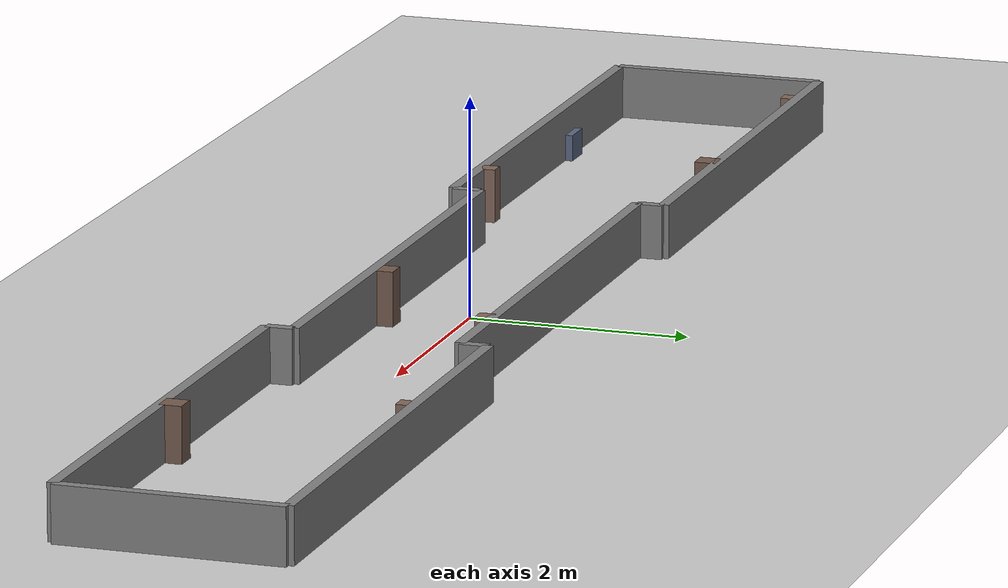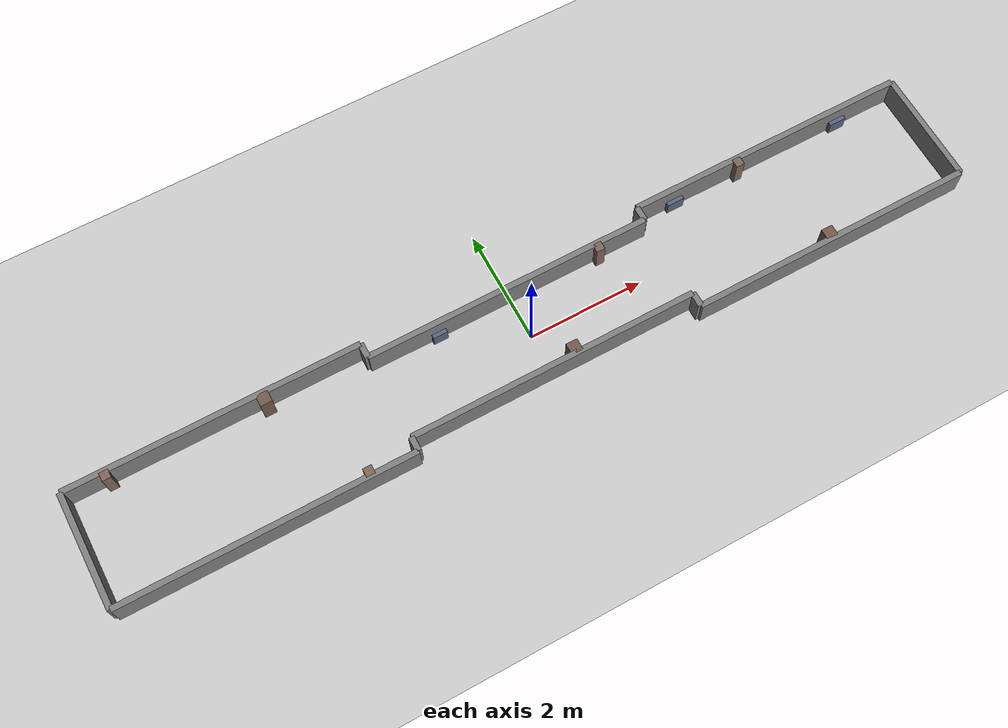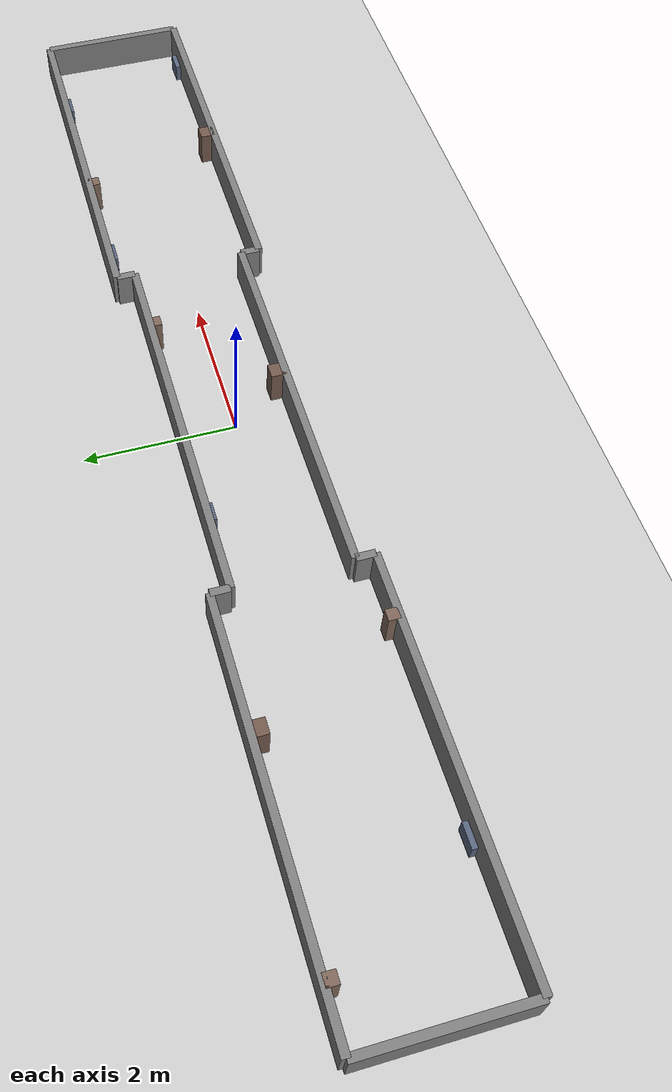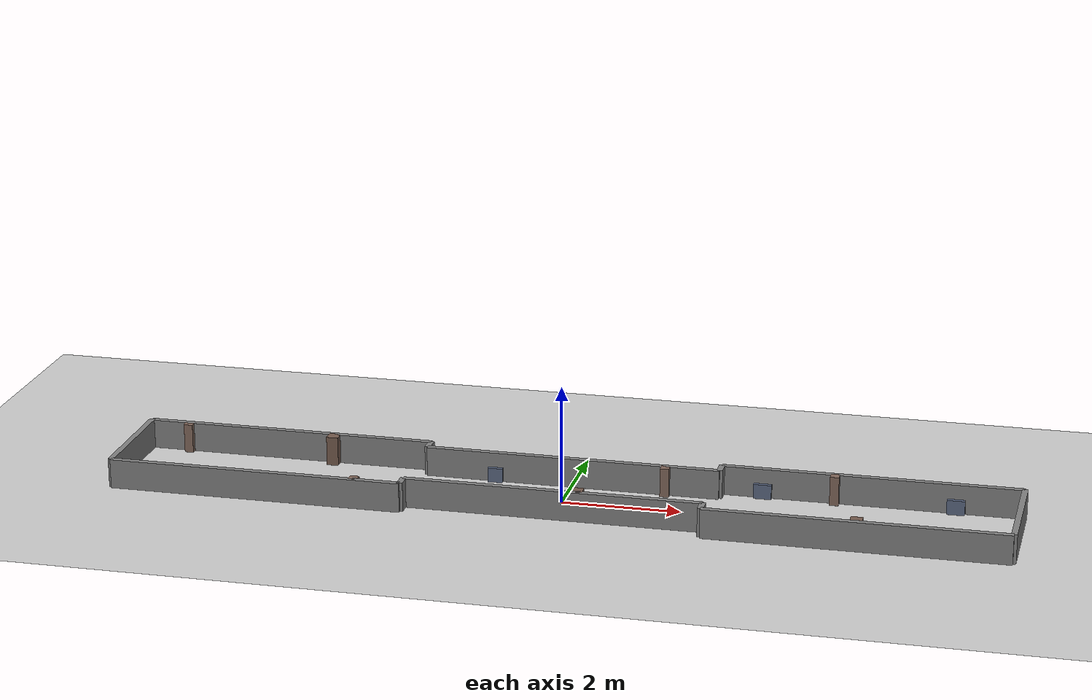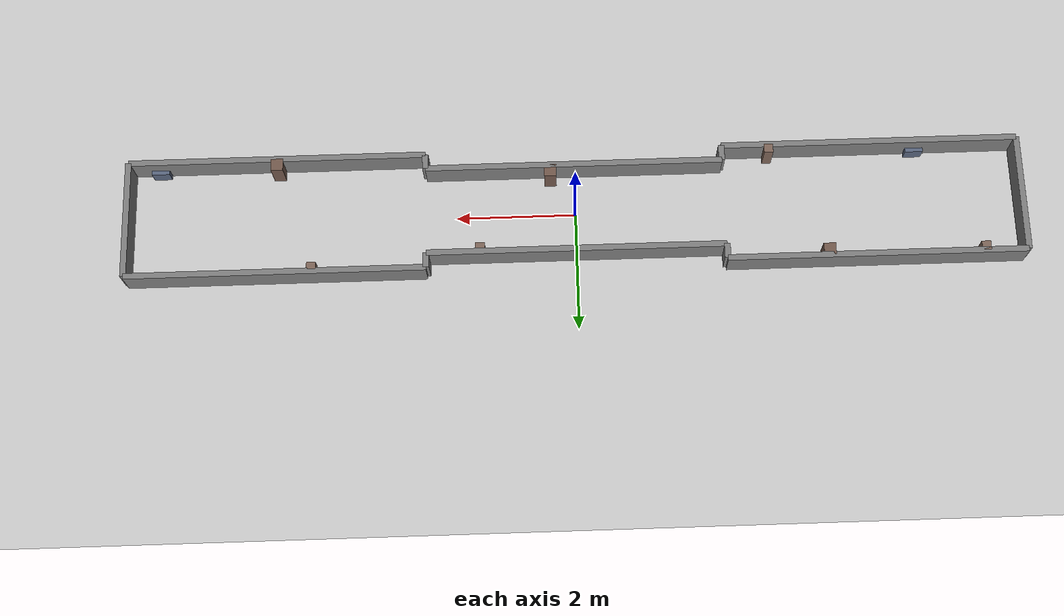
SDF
<?xml version="1.0" ?>
<sdf version="1.6">
  <world name="default">
    <plugin filename="libignition-gazebo-physics-system.so" name="ignition::gazebo::systems::Physics"/>
    <plugin filename="libignition-gazebo-user-commands-system.so" name="ignition::gazebo::systems::UserCommands"/>
    <plugin filename="libignition-gazebo-scene-broadcaster-system.so" name="ignition::gazebo::systems::SceneBroadcaster"/>
    <plugin filename="libignition-gazebo-imu-system.so" name="ignition::gazebo::systems::Imu"/>
    <plugin filename="libignition-gazebo-sensors-system.so" name="ignition::gazebo::systems::Sensors">
      <render_engine>ogre2</render_engine>
    </plugin>

    <light name="sun" type="directional">
      <pose>0 0 10 0 0.5 0</pose>
      <diffuse>1 1 1 1</diffuse>
      <specular>1 1 1 1</specular>
      <direction>-1 -1 -1</direction>
      <cast_shadows>true</cast_shadows>
    </light>

    <model name="ground_plane">
      <static>true</static>
      <link name="link">
        <collision name="collision">
          <geometry><plane><normal>0 0 1</normal><size>50 50</size></plane></geometry>
          <surface><friction><ode><mu>100</mu><mu2>50</mu2></ode></friction></surface>
        </collision>
        <visual name="visual">
          <geometry><plane><normal>0 0 1</normal><size>50 50</size></plane></geometry>
          <material>
            <ambient>0.8 0.8 0.8 1</ambient>
            <diffuse>0.8 0.8 0.8 1</diffuse>
            <specular>0.1 0.1 0.1 1</specular>
          </material>
        </visual>
      </link>
    </model>

    <!-- ===== WALLS ===== -->

    <!-- South wall: left section (x=-7.5 to -2.5, y=1.0, 2m wide) -->
    <model name="wall_south_left">
      <static>true</static>
      <pose>-5 1.0 0.25 0 0 0</pose>
      <link name="link">
        <collision name="collision"><geometry><box><size>5 0.1 0.5</size></box></geometry></collision>
        <visual name="visual">
          <geometry><box><size>5 0.1 0.5</size></box></geometry>
          <material><ambient>0.3 0.3 0.3 1</ambient><diffuse>0.5 0.5 0.5 1</diffuse><specular>0.1 0.1 0.1 1</specular></material>
        </visual>
      </link>
    </model>

    <!-- South wall: narrow section (x=-2.5 to +2.5, y=0.75, 1.5m wide) -->
    <model name="wall_south_narrow">
      <static>true</static>
      <pose>0 0.75 0.25 0 0 0</pose>
      <link name="link">
        <collision name="collision"><geometry><box><size>5 0.1 0.5</size></box></geometry></collision>
        <visual name="visual">
          <geometry><box><size>5 0.1 0.5</size></box></geometry>
          <material><ambient>0.3 0.3 0.3 1</ambient><diffuse>0.5 0.5 0.5 1</diffuse><specular>0.1 0.1 0.1 1</specular></material>
        </visual>
      </link>
    </model>

    <!-- South wall: right section (x=+2.5 to +7.5, y=1.0, 2m wide) -->
    <model name="wall_south_right">
      <static>true</static>
      <pose>5 1.0 0.25 0 0 0</pose>
      <link name="link">
        <collision name="collision"><geometry><box><size>5 0.1 0.5</size></box></geometry></collision>
        <visual name="visual">
          <geometry><box><size>5 0.1 0.5</size></box></geometry>
          <material><ambient>0.3 0.3 0.3 1</ambient><diffuse>0.5 0.5 0.5 1</diffuse><specular>0.1 0.1 0.1 1</specular></material>
        </visual>
      </link>
    </model>

    <!-- North wall: left section -->
    <model name="wall_north_left">
      <static>true</static>
      <pose>-5 -1.0 0.25 0 0 0</pose>
      <link name="link">
        <collision name="collision"><geometry><box><size>5 0.1 0.5</size></box></geometry></collision>
        <visual name="visual">
          <geometry><box><size>5 0.1 0.5</size></box></geometry>
          <material><ambient>0.3 0.3 0.3 1</ambient><diffuse>0.5 0.5 0.5 1</diffuse><specular>0.1 0.1 0.1 1</specular></material>
        </visual>
      </link>
    </model>

    <!-- North wall: narrow section -->
    <model name="wall_north_narrow">
      <static>true</static>
      <pose>0 -0.75 0.25 0 0 0</pose>
      <link name="link">
        <collision name="collision"><geometry><box><size>5 0.1 0.5</size></box></geometry></collision>
        <visual name="visual">
          <geometry><box><size>5 0.1 0.5</size></box></geometry>
          <material><ambient>0.3 0.3 0.3 1</ambient><diffuse>0.5 0.5 0.5 1</diffuse><specular>0.1 0.1 0.1 1</specular></material>
        </visual>
      </link>
    </model>

    <!-- North wall: right section -->
    <model name="wall_north_right">
      <static>true</static>
      <pose>5 -1.0 0.25 0 0 0</pose>
      <link name="link">
        <collision name="collision"><geometry><box><size>5 0.1 0.5</size></box></geometry></collision>
        <visual name="visual">
          <geometry><box><size>5 0.1 0.5</size></box></geometry>
          <material><ambient>0.3 0.3 0.3 1</ambient><diffuse>0.5 0.5 0.5 1</diffuse><specular>0.1 0.1 0.1 1</specular></material>
        </visual>
      </link>
    </model>

    <!-- Transition walls at width changes -->
    <model name="wall_trans_south_west">
      <static>true</static>
      <pose>-2.5 0.875 0.25 0 0 0</pose>
      <link name="link">
        <collision name="collision"><geometry><box><size>0.1 0.25 0.5</size></box></geometry></collision>
        <visual name="visual">
          <geometry><box><size>0.1 0.25 0.5</size></box></geometry>
          <material><ambient>0.3 0.3 0.3 1</ambient><diffuse>0.5 0.5 0.5 1</diffuse><specular>0.1 0.1 0.1 1</specular></material>
        </visual>
      </link>
    </model>
    <model name="wall_trans_south_east">
      <static>true</static>
      <pose>2.5 0.875 0.25 0 0 0</pose>
      <link name="link">
        <collision name="collision"><geometry><box><size>0.1 0.25 0.5</size></box></geometry></collision>
        <visual name="visual">
          <geometry><box><size>0.1 0.25 0.5</size></box></geometry>
          <material><ambient>0.3 0.3 0.3 1</ambient><diffuse>0.5 0.5 0.5 1</diffuse><specular>0.1 0.1 0.1 1</specular></material>
        </visual>
      </link>
    </model>
    <model name="wall_trans_north_west">
      <static>true</static>
      <pose>-2.5 -0.875 0.25 0 0 0</pose>
      <link name="link">
        <collision name="collision"><geometry><box><size>0.1 0.25 0.5</size></box></geometry></collision>
        <visual name="visual">
          <geometry><box><size>0.1 0.25 0.5</size></box></geometry>
          <material><ambient>0.3 0.3 0.3 1</ambient><diffuse>0.5 0.5 0.5 1</diffuse><specular>0.1 0.1 0.1 1</specular></material>
        </visual>
      </link>
    </model>
    <model name="wall_trans_north_east">
      <static>true</static>
      <pose>2.5 -0.875 0.25 0 0 0</pose>
      <link name="link">
        <collision name="collision"><geometry><box><size>0.1 0.25 0.5</size></box></geometry></collision>
        <visual name="visual">
          <geometry><box><size>0.1 0.25 0.5</size></box></geometry>
          <material><ambient>0.3 0.3 0.3 1</ambient><diffuse>0.5 0.5 0.5 1</diffuse><specular>0.1 0.1 0.1 1</specular></material>
        </visual>
      </link>
    </model>

    <!-- West end wall -->
    <model name="wall_west">
      <static>true</static>
      <pose>-7.5 0 0.25 0 0 0</pose>
      <link name="link">
        <collision name="collision"><geometry><box><size>0.1 2.0 0.5</size></box></geometry></collision>
        <visual name="visual">
          <geometry><box><size>0.1 2.0 0.5</size></box></geometry>
          <material><ambient>0.3 0.3 0.3 1</ambient><diffuse>0.5 0.5 0.5 1</diffuse><specular>0.1 0.1 0.1 1</specular></material>
        </visual>
      </link>
    </model>

    <!-- East end wall -->
    <model name="wall_east">
      <static>true</static>
      <pose>7.5 0 0.25 0 0 0</pose>
      <link name="link">
        <collision name="collision"><geometry><box><size>0.1 2.0 0.5</size></box></geometry></collision>
        <visual name="visual">
          <geometry><box><size>0.1 2.0 0.5</size></box></geometry>
          <material><ambient>0.3 0.3 0.3 1</ambient><diffuse>0.5 0.5 0.5 1</diffuse><specular>0.1 0.1 0.1 1</specular></material>
        </visual>
      </link>
    </model>

    <!-- ===== FEATURES: LEFT SECTION (x=-7.5 to -2.5) ===== -->
    <!-- Pattern: 2 south features, 2 north features, aperiodic gaps -->

    <!-- South wall: pillar at -6.8, large-pillar at -4.2 -->
    <model name="feat_1">
      <static>true</static>
      <pose>-6.8 0.925 0.25 0 0 0</pose>
      <link name="link">
        <collision name="collision"><geometry><box><size>0.15 0.15 0.5</size></box></geometry></collision>
        <visual name="visual">
          <geometry><box><size>0.15 0.15 0.5</size></box></geometry>
          <material><ambient>0.4 0.3 0.25 1</ambient><diffuse>0.5 0.4 0.35 1</diffuse></material>
        </visual>
      </link>
    </model>
    <model name="feat_2">
      <static>true</static>
      <pose>-4.2 0.90 0.25 0 0 0</pose>
      <link name="link">
        <collision name="collision"><geometry><box><size>0.20 0.20 0.5</size></box></geometry></collision>
        <visual name="visual">
          <geometry><box><size>0.20 0.20 0.5</size></box></geometry>
          <material><ambient>0.35 0.25 0.20 1</ambient><diffuse>0.45 0.35 0.30 1</diffuse></material>
        </visual>
      </link>
    </model>

    <!-- North wall: cabinet at -5.8, pillar at -3.3 -->
    <model name="feat_3">
      <static>true</static>
      <pose>-5.8 -0.94 0.125 0 0 0</pose>
      <link name="link">
        <collision name="collision"><geometry><box><size>0.3 0.12 0.25</size></box></geometry></collision>
        <visual name="visual">
          <geometry><box><size>0.3 0.12 0.25</size></box></geometry>
          <material><ambient>0.25 0.3 0.4 1</ambient><diffuse>0.35 0.4 0.5 1</diffuse></material>
        </visual>
      </link>
    </model>
    <model name="feat_4">
      <static>true</static>
      <pose>-3.3 -0.925 0.25 0 0 0</pose>
      <link name="link">
        <collision name="collision"><geometry><box><size>0.15 0.15 0.5</size></box></geometry></collision>
        <visual name="visual">
          <geometry><box><size>0.15 0.15 0.5</size></box></geometry>
          <material><ambient>0.4 0.3 0.25 1</ambient><diffuse>0.5 0.4 0.35 1</diffuse></material>
        </visual>
      </link>
    </model>

    <!-- ===== FEATURES: NARROW SECTION (x=-2.5 to +2.5) ===== -->
    <!-- Previously had ZERO features — added 3 to break symmetry -->

    <!-- South wall: cabinet at -1.3, pillar at 1.6 -->
    <model name="feat_5">
      <static>true</static>
      <pose>-1.3 0.69 0.125 0 0 0</pose>
      <link name="link">
        <collision name="collision"><geometry><box><size>0.25 0.12 0.25</size></box></geometry></collision>
        <visual name="visual">
          <geometry><box><size>0.25 0.12 0.25</size></box></geometry>
          <material><ambient>0.25 0.3 0.4 1</ambient><diffuse>0.35 0.4 0.5 1</diffuse></material>
        </visual>
      </link>
    </model>
    <model name="feat_6">
      <static>true</static>
      <pose>1.6 0.675 0.25 0 0 0</pose>
      <link name="link">
        <collision name="collision"><geometry><box><size>0.15 0.15 0.5</size></box></geometry></collision>
        <visual name="visual">
          <geometry><box><size>0.15 0.15 0.5</size></box></geometry>
          <material><ambient>0.4 0.3 0.25 1</ambient><diffuse>0.5 0.4 0.35 1</diffuse></material>
        </visual>
      </link>
    </model>

    <!-- North wall: large-pillar at 0.4 -->
    <model name="feat_7">
      <static>true</static>
      <pose>0.4 -0.65 0.25 0 0 0</pose>
      <link name="link">
        <collision name="collision"><geometry><box><size>0.20 0.20 0.5</size></box></geometry></collision>
        <visual name="visual">
          <geometry><box><size>0.20 0.20 0.5</size></box></geometry>
          <material><ambient>0.35 0.25 0.20 1</ambient><diffuse>0.45 0.35 0.30 1</diffuse></material>
        </visual>
      </link>
    </model>

    <!-- ===== FEATURES: RIGHT SECTION (x=+2.5 to +7.5) ===== -->
    <!-- DIFFERENT pattern from left: cabinet-pillar-cabinet on south, pillar on north -->
    <!-- Gaps: 1.2m, 2.0m (different from left's 2.6m gap) -->

    <!-- South wall: cabinet at 3.2, pillar at 4.4, cabinet at 6.4 -->
    <model name="feat_8">
      <static>true</static>
      <pose>3.2 0.94 0.125 0 0 0</pose>
      <link name="link">
        <collision name="collision"><geometry><box><size>0.3 0.12 0.25</size></box></geometry></collision>
        <visual name="visual">
          <geometry><box><size>0.3 0.12 0.25</size></box></geometry>
          <material><ambient>0.25 0.3 0.4 1</ambient><diffuse>0.35 0.4 0.5 1</diffuse></material>
        </visual>
      </link>
    </model>
    <model name="feat_9">
      <static>true</static>
      <pose>4.4 0.925 0.25 0 0 0</pose>
      <link name="link">
        <collision name="collision"><geometry><box><size>0.15 0.15 0.5</size></box></geometry></collision>
        <visual name="visual">
          <geometry><box><size>0.15 0.15 0.5</size></box></geometry>
          <material><ambient>0.4 0.3 0.25 1</ambient><diffuse>0.5 0.4 0.35 1</diffuse></material>
        </visual>
      </link>
    </model>
    <model name="feat_10">
      <static>true</static>
      <pose>6.4 0.94 0.125 0 0 0</pose>
      <link name="link">
        <collision name="collision"><geometry><box><size>0.3 0.12 0.25</size></box></geometry></collision>
        <visual name="visual">
          <geometry><box><size>0.3 0.12 0.25</size></box></geometry>
          <material><ambient>0.25 0.3 0.4 1</ambient><diffuse>0.35 0.4 0.5 1</diffuse></material>
        </visual>
      </link>
    </model>

    <!-- North wall: large-pillar at 5.0, cabinet at 7.0 -->
    <model name="feat_11">
      <static>true</static>
      <pose>5.0 -0.90 0.25 0 0 0</pose>
      <link name="link">
        <collision name="collision"><geometry><box><size>0.20 0.20 0.5</size></box></geometry></collision>
        <visual name="visual">
          <geometry><box><size>0.20 0.20 0.5</size></box></geometry>
          <material><ambient>0.35 0.25 0.20 1</ambient><diffuse>0.45 0.35 0.30 1</diffuse></material>
        </visual>
      </link>
    </model>
    <model name="feat_12">
      <static>true</static>
      <pose>7.0 -0.94 0.125 0 0 0</pose>
      <link name="link">
        <collision name="collision"><geometry><box><size>0.3 0.12 0.25</size></box></geometry></collision>
        <visual name="visual">
          <geometry><box><size>0.3 0.12 0.25</size></box></geometry>
          <material><ambient>0.25 0.3 0.4 1</ambient><diffuse>0.35 0.4 0.5 1</diffuse></material>
        </visual>
      </link>
    </model>
  </world>
</sdf>
